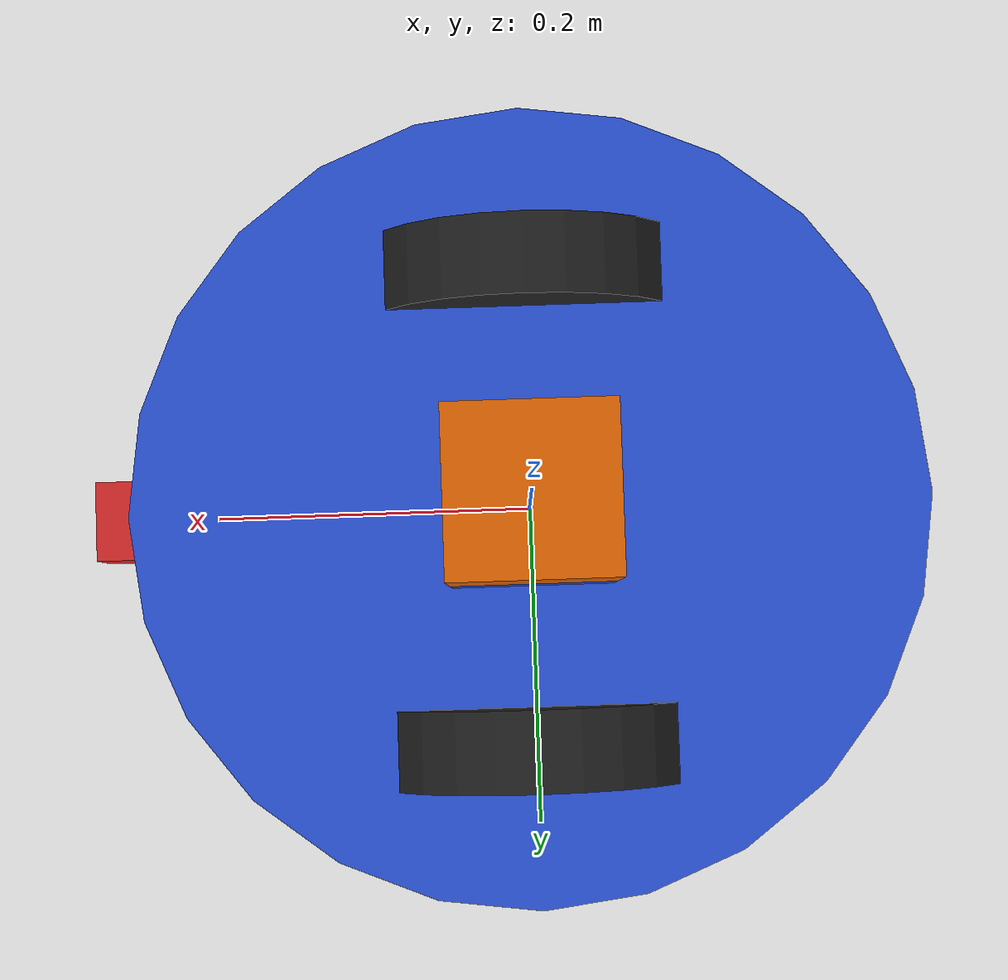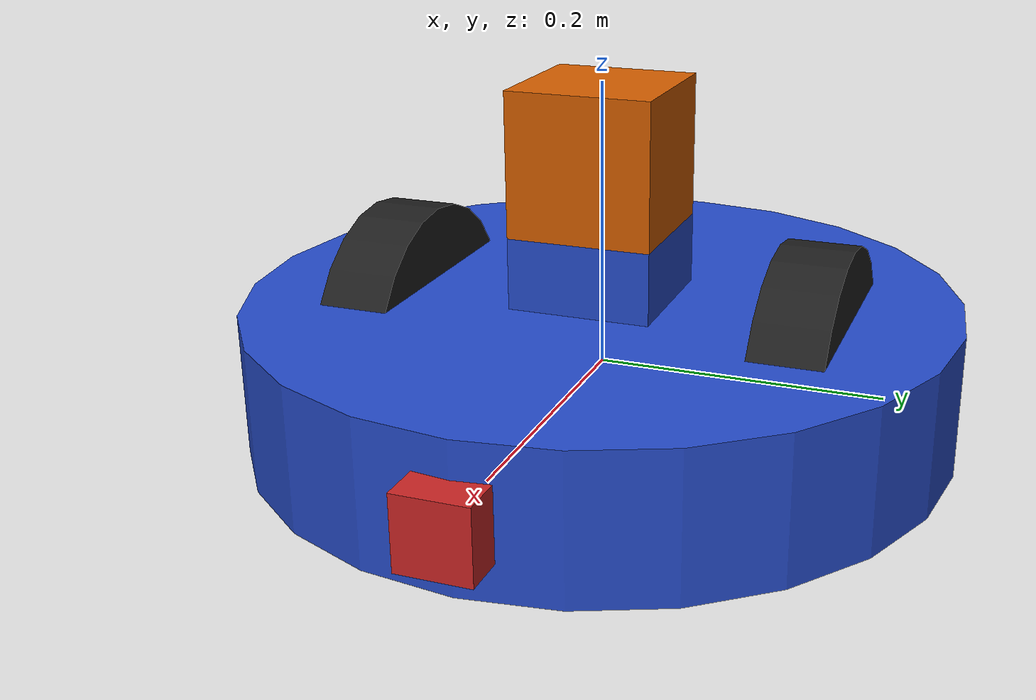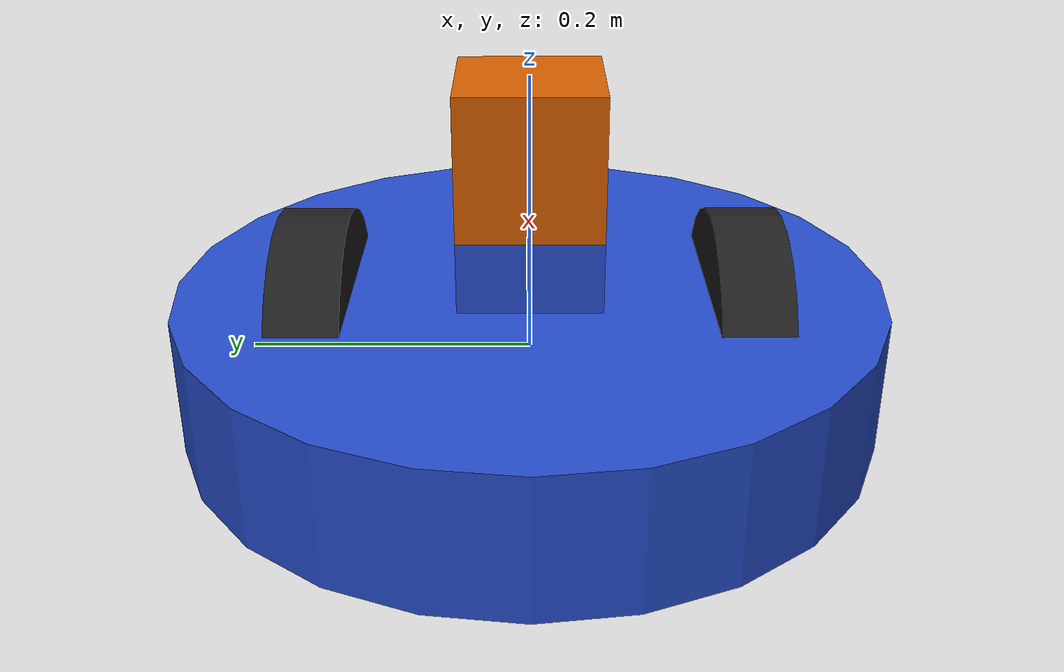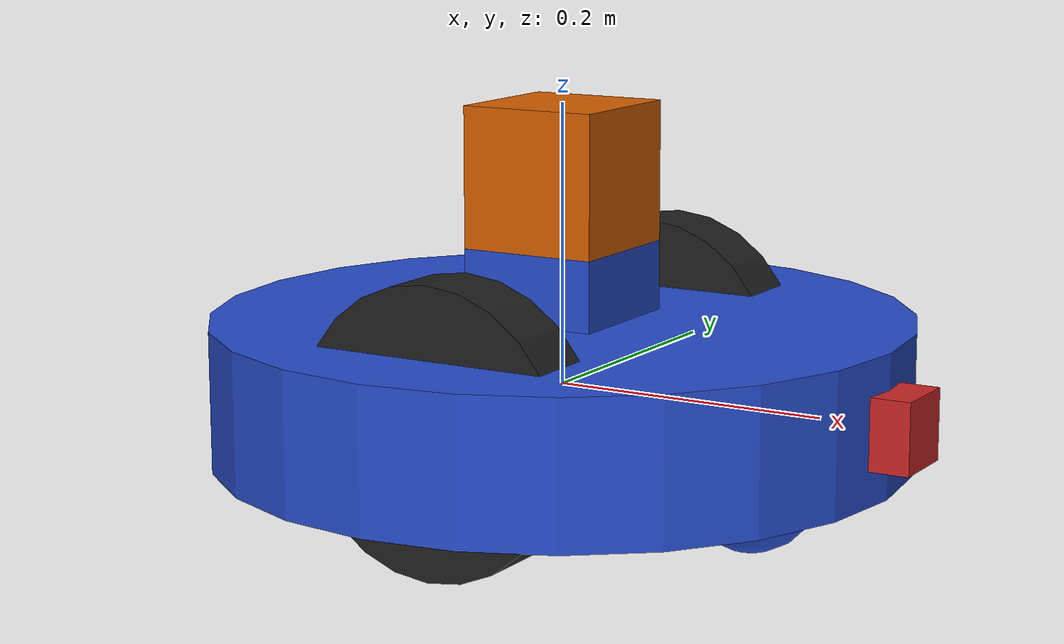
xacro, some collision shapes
<?xml version='1.0'?>

<robot name="udacity_bot_chris" xmlns:xacro="http://www.ros.org/wiki/xacro">

<xacro:include filename="$(find udacity_bot)/urdf/udacity_bot_chris.gazebo" />

<!-- Robot Footprint -->
  <link name="robot_footprint"></link>

  <joint name="robot_footprint_joint" type="fixed">
    <origin xyz="0 0 0" rpy="0 0 0" />
    <parent link="robot_footprint"/>
    <child link="chassis" />
  </joint>

<!-- Robot Chassis -->
  <link name='chassis'>
    <pose>0 0 0.1 0 0 0</pose>

    <inertial>
      <mass value="15.0"/>
      <origin xyz="0.0 0 0" rpy=" 0 0 0"/>
      <inertia
          ixx="0.1" ixy="0" ixz="0"
          iyy="0.1" iyz="0"
          izz="0.1"
      />
    </inertial>

    <collision name='collision'>
      <origin xyz="0 0 0" rpy=" 0 0 0"/>
      <geometry>
        <cylinder radius=".25" length=".1"/>
      </geometry>
    </collision>

    <visual name='chassis_visual'>
      <origin xyz="0 0 0" rpy=" 0 0 0"/>
      <geometry>
        <cylinder radius=".25" length=".1"/>
      </geometry>
    </visual>

    <collision name='back_caster_collision'>
      <origin xyz="-0.15 0 -0.05" rpy=" 0 0 0"/>
      <geometry>
        <sphere radius="0.0499"/>
      </geometry>
    </collision>

    <visual name='back_caster_visual'>
      <origin xyz="-0.15 0 -0.05" rpy=" 0 0 0"/>
      <geometry>
        <sphere radius="0.05"/>
      </geometry>
    </visual>

    <collision name='front_caster_collision'>
      <origin xyz="0.15 0 -0.05" rpy=" 0 0 0"/>
      <geometry>
        <sphere radius="0.0499"/>
      </geometry>
    </collision>

    <visual name='front_caster_visual'>
      <origin xyz="0.15 0 -0.05" rpy=" 0 0 0"/>
      <geometry>
        <sphere radius="0.05"/>
      </geometry>
    </visual>

    <collision name='laser_sockel_collision'>
      <origin xyz="0 0 0.05" rpy=" 0 0 0"/>
      <geometry>
        <box size=".1 .1 .1"/>
      </geometry>
    </collision>

    <visual name='laser_sockel_visual'>
      <origin xyz="0 0 0.05" rpy=" 0 0 0"/>
      <geometry>
      	<box size=".1 .1 .1"/>
      </geometry>
    </visual>

  </link>

<!-- Robot Wheels -->
  <link name='left_wheel'>
    <inertial>
      <mass value="5.0"/>
      <origin xyz="0 0 0" rpy=" 0 1.5707 1.5707"/>
      <inertia
          ixx="0.1" ixy="0" ixz="0"
          iyy="0.1" iyz="0"
          izz="0.1"
      />
    </inertial>

    <collision name='left_wheel_collision'>
      <origin xyz="0 0 0" rpy=" 0 1.5707 1.5707"/>
      <geometry>
        <cylinder radius=".1" length=".05"/>
      </geometry>
    </collision>

    <visual name='left_wheel_visual'>
      <origin xyz="0 0 0" rpy=" 0 1.5707 1.5707"/>
      <geometry>
        <cylinder radius=".1" length=".05"/>
      </geometry>
    </visual>
  </link>

  <link name='right_wheel'>
    <inertial>
      <mass value="5.0"/>
      <origin xyz="0 0 0" rpy=" 0 1.5707 1.5707"/>
      <inertia
          ixx="0.1" ixy="0" ixz="0"
          iyy="0.1" iyz="0"
          izz="0.1"
      />
    </inertial>

    <collision name='right_wheel_collision'>
      <origin xyz="0 0 0" rpy=" 0 1.5707 1.5707"/>
      <geometry>
        <cylinder radius=".1" length=".05"/>
      </geometry>
    </collision>

    <visual name='right_wheel_visual'>
      <origin xyz="0 0 0" rpy=" 0 1.5707 1.5707"/>
      <geometry>
        <cylinder radius=".1" length=".05"/>
      </geometry>
    </visual>
  </link>

  <joint type="continuous" name="left_wheel_hinge">
    <origin xyz="0 0.15 0" rpy="0 0 0"/>
    <child link="left_wheel"/>
    <parent link="chassis"/>
    <axis xyz="0 1 0" rpy="0 0 0"/>
    <limit effort="10000" velocity="1000"/>
    <dynamics damping="1.0" friction="1.0"/>
  </joint>

  <joint type="continuous" name="right_wheel_hinge">
    <origin xyz="0 -0.15 0" rpy="0 0 0"/>
    <child link="right_wheel"/>
    <parent link="chassis"/>
    <axis xyz="0 1 0" rpy="0 0 0"/>
    <limit effort="10000" velocity="1000"/>
    <dynamics damping="1.0" friction="1.0"/>
  </joint>

<!-- Robot Camera -->
  <link name='camera'>
    <inertial>
      <mass value="0.1"/>
      <origin xyz="0 0 0" rpy=" 0 0 0"/>
      <inertia
          ixx="1e-6" ixy="0" ixz="0"
          iyy="1e-6" iyz="0"
          izz="1e-6"
      />
    </inertial>

    <collision name='camera_collision'>
      <origin xyz="0 0 0" rpy=" 0 0 0"/>
      <geometry>
        <box size=".05 .05 .05"/>
      </geometry>
    </collision>

    <visual name='camera_visual'>
      <origin xyz="0 0 0" rpy=" 0 0 0"/>
      <geometry>
        <box size=".05 .05 .05"/>
      </geometry>
    </visual>
  </link>

  <joint type="fixed" name="camera_joint">
    <origin xyz="0.25 0 0" rpy="0 0 0"/>
    <child link="camera"/>
    <parent link="chassis"/>
    <axis xyz="0 1 0" rpy="0 0 0"/>
  </joint>

<!-- Robot Laser Rangefinder -->
  <link name='hokuyo'>
    <inertial>
      <mass value="0.1"/>
      <origin xyz="0 0 0" rpy=" 0 0 0"/>
      <inertia
          ixx="1e-6" ixy="0" ixz="0"
          iyy="1e-6" iyz="0"
          izz="1e-6"
      />
    </inertial>

    <collision name='hokuyo_collision'>
      <origin xyz="0 0 0" rpy=" 0 0 0"/>
      <geometry>
        <box size=".1 .1 .1"/>
      </geometry>
    </collision>

    <visual name='hokuyo_visual'>
      <origin xyz="0 0 0" rpy=" 0 0 0"/>
      <geometry>
        <mesh filename="package://udacity_bot/meshes/hokuyo.dae"/>
      </geometry>
    </visual>
  </link>

  <joint type="fixed" name="hokuyo_joint">
    <origin xyz="0 0 0.15" rpy="0 0 0"/>
    <child link="hokuyo"/>
    <parent link="chassis"/>
    <axis xyz="0 1 0" rpy="0 0 0"/>
  </joint>

</robot>
